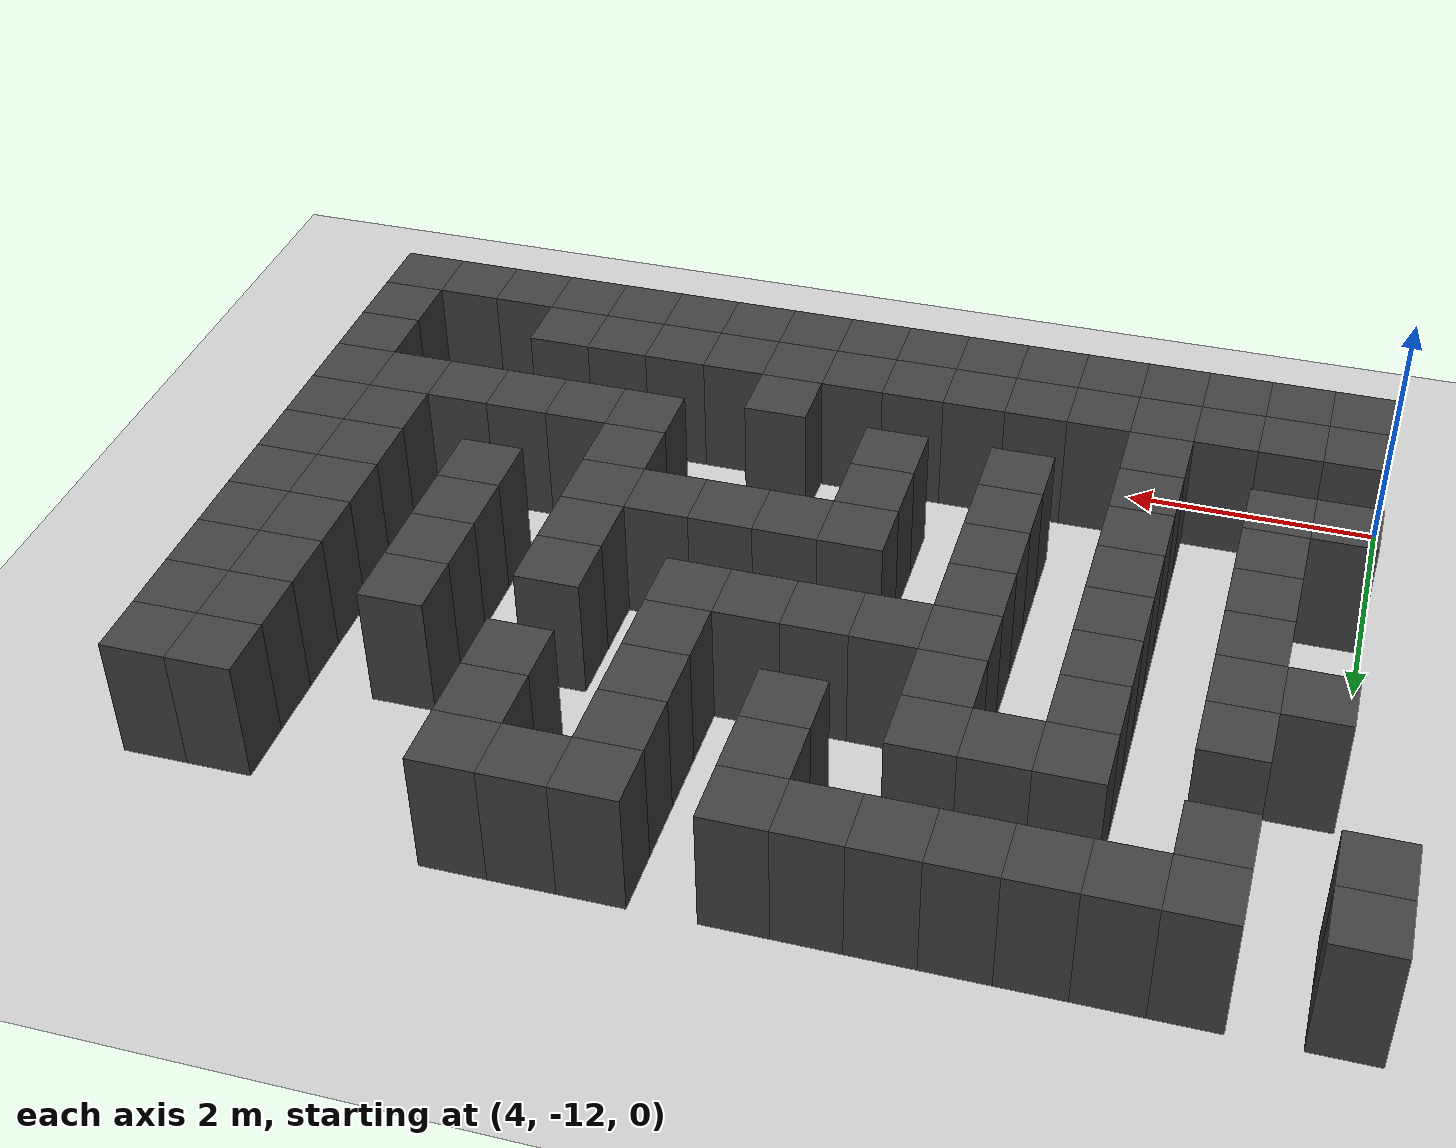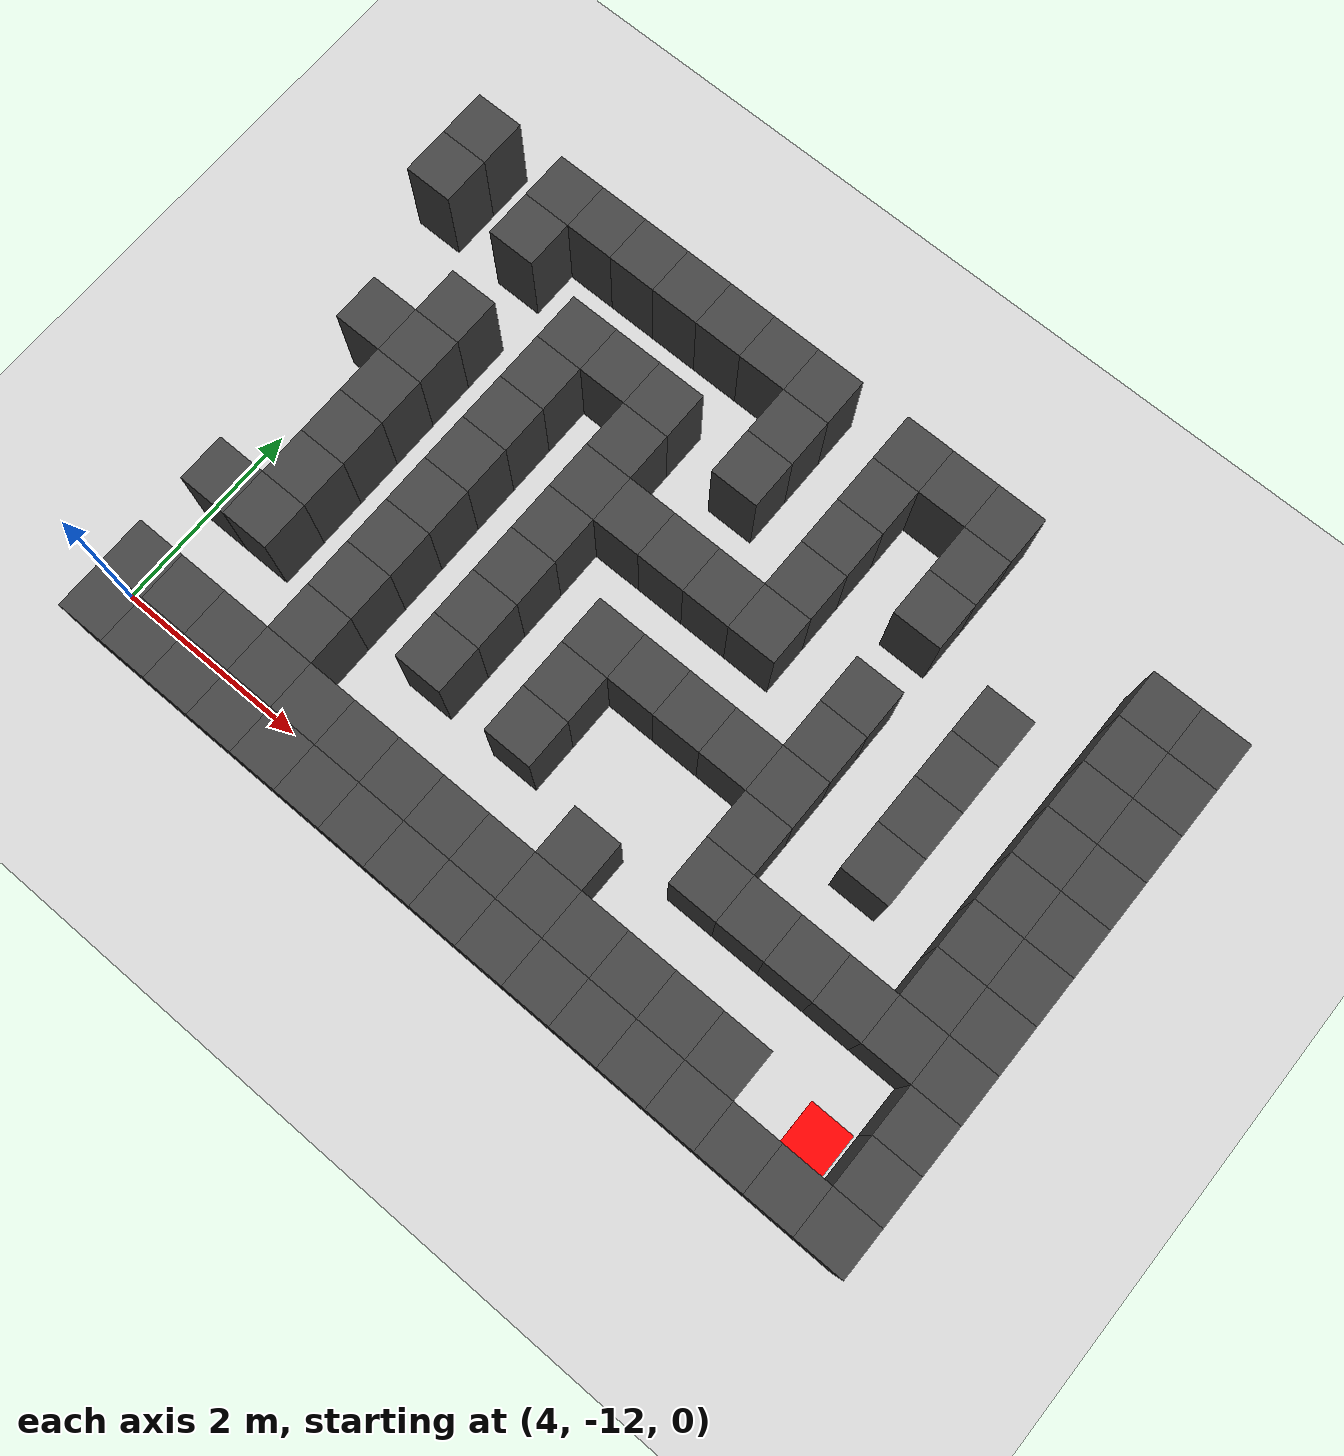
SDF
<sdf version="1.7">
 <world name="map_18332">
  <model name="ground_plane">
   <static>true</static>
   <link name="link">
    <collision name="collision">
     <geometry><plane><normal>0 0 1</normal><size>200 200</size></plane></geometry>
    </collision>
    <visual name="visual">
     <geometry><plane><normal>0 0 1</normal><size>200 200</size></plane></geometry>
     <material><ambient>0.8 0.8 0.8 1</ambient><diffuse>0.8 0.8 0.8 1</diffuse></material>
    </visual>
   </link>
  </model>
  <model name="maze_environment">
   <static>true</static>
   <link name="wall_977">
    <pose>3.750 -6.750 0.500 0 0 0</pose>
    <collision name="col"><geometry><box><size>0.5 0.5 1.0</size></box></geometry></collision>
    <visual name="vis">
     <geometry><box><size>0.5 0.5 1.0</size></box></geometry>
     <material><ambient>0.15 0.15 0.15 1</ambient><diffuse>0.25 0.25 0.25 1</diffuse></material>
    </visual>
   </link>
   <link name="wall_978">
    <pose>4.750 -6.750 0.500 0 0 0</pose>
    <collision name="col"><geometry><box><size>0.5 0.5 1.0</size></box></geometry></collision>
    <visual name="vis">
     <geometry><box><size>0.5 0.5 1.0</size></box></geometry>
     <material><ambient>0.15 0.15 0.15 1</ambient><diffuse>0.25 0.25 0.25 1</diffuse></material>
    </visual>
   </link>
   <link name="wall_979">
    <pose>5.250 -6.750 0.500 0 0 0</pose>
    <collision name="col"><geometry><box><size>0.5 0.5 1.0</size></box></geometry></collision>
    <visual name="vis">
     <geometry><box><size>0.5 0.5 1.0</size></box></geometry>
     <material><ambient>0.15 0.15 0.15 1</ambient><diffuse>0.25 0.25 0.25 1</diffuse></material>
    </visual>
   </link>
   <link name="wall_980">
    <pose>5.750 -6.750 0.500 0 0 0</pose>
    <collision name="col"><geometry><box><size>0.5 0.5 1.0</size></box></geometry></collision>
    <visual name="vis">
     <geometry><box><size>0.5 0.5 1.0</size></box></geometry>
     <material><ambient>0.15 0.15 0.15 1</ambient><diffuse>0.25 0.25 0.25 1</diffuse></material>
    </visual>
   </link>
   <link name="wall_981">
    <pose>6.250 -6.750 0.500 0 0 0</pose>
    <collision name="col"><geometry><box><size>0.5 0.5 1.0</size></box></geometry></collision>
    <visual name="vis">
     <geometry><box><size>0.5 0.5 1.0</size></box></geometry>
     <material><ambient>0.15 0.15 0.15 1</ambient><diffuse>0.25 0.25 0.25 1</diffuse></material>
    </visual>
   </link>
   <link name="wall_982">
    <pose>6.750 -6.750 0.500 0 0 0</pose>
    <collision name="col"><geometry><box><size>0.5 0.5 1.0</size></box></geometry></collision>
    <visual name="vis">
     <geometry><box><size>0.5 0.5 1.0</size></box></geometry>
     <material><ambient>0.15 0.15 0.15 1</ambient><diffuse>0.25 0.25 0.25 1</diffuse></material>
    </visual>
   </link>
   <link name="wall_983">
    <pose>7.250 -6.750 0.500 0 0 0</pose>
    <collision name="col"><geometry><box><size>0.5 0.5 1.0</size></box></geometry></collision>
    <visual name="vis">
     <geometry><box><size>0.5 0.5 1.0</size></box></geometry>
     <material><ambient>0.15 0.15 0.15 1</ambient><diffuse>0.25 0.25 0.25 1</diffuse></material>
    </visual>
   </link>
   <link name="wall_984">
    <pose>7.750 -6.750 0.500 0 0 0</pose>
    <collision name="col"><geometry><box><size>0.5 0.5 1.0</size></box></geometry></collision>
    <visual name="vis">
     <geometry><box><size>0.5 0.5 1.0</size></box></geometry>
     <material><ambient>0.15 0.15 0.15 1</ambient><diffuse>0.25 0.25 0.25 1</diffuse></material>
    </visual>
   </link>
   <link name="wall_985">
    <pose>8.750 -6.750 0.500 0 0 0</pose>
    <collision name="col"><geometry><box><size>0.5 0.5 1.0</size></box></geometry></collision>
    <visual name="vis">
     <geometry><box><size>0.5 0.5 1.0</size></box></geometry>
     <material><ambient>0.15 0.15 0.15 1</ambient><diffuse>0.25 0.25 0.25 1</diffuse></material>
    </visual>
   </link>
   <link name="wall_986">
    <pose>9.250 -6.750 0.500 0 0 0</pose>
    <collision name="col"><geometry><box><size>0.5 0.5 1.0</size></box></geometry></collision>
    <visual name="vis">
     <geometry><box><size>0.5 0.5 1.0</size></box></geometry>
     <material><ambient>0.15 0.15 0.15 1</ambient><diffuse>0.25 0.25 0.25 1</diffuse></material>
    </visual>
   </link>
   <link name="wall_987">
    <pose>9.750 -6.750 0.500 0 0 0</pose>
    <collision name="col"><geometry><box><size>0.5 0.5 1.0</size></box></geometry></collision>
    <visual name="vis">
     <geometry><box><size>0.5 0.5 1.0</size></box></geometry>
     <material><ambient>0.15 0.15 0.15 1</ambient><diffuse>0.25 0.25 0.25 1</diffuse></material>
    </visual>
   </link>
   <link name="wall_998">
    <pose>3.750 -7.250 0.500 0 0 0</pose>
    <collision name="col"><geometry><box><size>0.5 0.5 1.0</size></box></geometry></collision>
    <visual name="vis">
     <geometry><box><size>0.5 0.5 1.0</size></box></geometry>
     <material><ambient>0.15 0.15 0.15 1</ambient><diffuse>0.25 0.25 0.25 1</diffuse></material>
    </visual>
   </link>
   <link name="wall_999">
    <pose>4.750 -7.250 0.500 0 0 0</pose>
    <collision name="col"><geometry><box><size>0.5 0.5 1.0</size></box></geometry></collision>
    <visual name="vis">
     <geometry><box><size>0.5 0.5 1.0</size></box></geometry>
     <material><ambient>0.15 0.15 0.15 1</ambient><diffuse>0.25 0.25 0.25 1</diffuse></material>
    </visual>
   </link>
   <link name="wall_1000">
    <pose>7.750 -7.250 0.500 0 0 0</pose>
    <collision name="col"><geometry><box><size>0.5 0.5 1.0</size></box></geometry></collision>
    <visual name="vis">
     <geometry><box><size>0.5 0.5 1.0</size></box></geometry>
     <material><ambient>0.15 0.15 0.15 1</ambient><diffuse>0.25 0.25 0.25 1</diffuse></material>
    </visual>
   </link>
   <link name="wall_1001">
    <pose>8.750 -7.250 0.500 0 0 0</pose>
    <collision name="col"><geometry><box><size>0.5 0.5 1.0</size></box></geometry></collision>
    <visual name="vis">
     <geometry><box><size>0.5 0.5 1.0</size></box></geometry>
     <material><ambient>0.15 0.15 0.15 1</ambient><diffuse>0.25 0.25 0.25 1</diffuse></material>
    </visual>
   </link>
   <link name="wall_1002">
    <pose>9.750 -7.250 0.500 0 0 0</pose>
    <collision name="col"><geometry><box><size>0.5 0.5 1.0</size></box></geometry></collision>
    <visual name="vis">
     <geometry><box><size>0.5 0.5 1.0</size></box></geometry>
     <material><ambient>0.15 0.15 0.15 1</ambient><diffuse>0.25 0.25 0.25 1</diffuse></material>
    </visual>
   </link>
   <link name="wall_1003">
    <pose>11.750 -7.250 0.500 0 0 0</pose>
    <collision name="col"><geometry><box><size>0.5 0.5 1.0</size></box></geometry></collision>
    <visual name="vis">
     <geometry><box><size>0.5 0.5 1.0</size></box></geometry>
     <material><ambient>0.15 0.15 0.15 1</ambient><diffuse>0.25 0.25 0.25 1</diffuse></material>
    </visual>
   </link>
   <link name="wall_1004">
    <pose>12.250 -7.250 0.500 0 0 0</pose>
    <collision name="col"><geometry><box><size>0.5 0.5 1.0</size></box></geometry></collision>
    <visual name="vis">
     <geometry><box><size>0.5 0.5 1.0</size></box></geometry>
     <material><ambient>0.15 0.15 0.15 1</ambient><diffuse>0.25 0.25 0.25 1</diffuse></material>
    </visual>
   </link>
   <link name="wall_1029">
    <pose>5.750 -7.750 0.500 0 0 0</pose>
    <collision name="col"><geometry><box><size>0.5 0.5 1.0</size></box></geometry></collision>
    <visual name="vis">
     <geometry><box><size>0.5 0.5 1.0</size></box></geometry>
     <material><ambient>0.15 0.15 0.15 1</ambient><diffuse>0.25 0.25 0.25 1</diffuse></material>
    </visual>
   </link>
   <link name="wall_1030">
    <pose>6.250 -7.750 0.500 0 0 0</pose>
    <collision name="col"><geometry><box><size>0.5 0.5 1.0</size></box></geometry></collision>
    <visual name="vis">
     <geometry><box><size>0.5 0.5 1.0</size></box></geometry>
     <material><ambient>0.15 0.15 0.15 1</ambient><diffuse>0.25 0.25 0.25 1</diffuse></material>
    </visual>
   </link>
   <link name="wall_1031">
    <pose>6.750 -7.750 0.500 0 0 0</pose>
    <collision name="col"><geometry><box><size>0.5 0.5 1.0</size></box></geometry></collision>
    <visual name="vis">
     <geometry><box><size>0.5 0.5 1.0</size></box></geometry>
     <material><ambient>0.15 0.15 0.15 1</ambient><diffuse>0.25 0.25 0.25 1</diffuse></material>
    </visual>
   </link>
   <link name="wall_1032">
    <pose>7.750 -7.750 0.500 0 0 0</pose>
    <collision name="col"><geometry><box><size>0.5 0.5 1.0</size></box></geometry></collision>
    <visual name="vis">
     <geometry><box><size>0.5 0.5 1.0</size></box></geometry>
     <material><ambient>0.15 0.15 0.15 1</ambient><diffuse>0.25 0.25 0.25 1</diffuse></material>
    </visual>
   </link>
   <link name="wall_1033">
    <pose>8.750 -7.750 0.500 0 0 0</pose>
    <collision name="col"><geometry><box><size>0.5 0.5 1.0</size></box></geometry></collision>
    <visual name="vis">
     <geometry><box><size>0.5 0.5 1.0</size></box></geometry>
     <material><ambient>0.15 0.15 0.15 1</ambient><diffuse>0.25 0.25 0.25 1</diffuse></material>
    </visual>
   </link>
   <link name="wall_1034">
    <pose>9.750 -7.750 0.500 0 0 0</pose>
    <collision name="col"><geometry><box><size>0.5 0.5 1.0</size></box></geometry></collision>
    <visual name="vis">
     <geometry><box><size>0.5 0.5 1.0</size></box></geometry>
     <material><ambient>0.15 0.15 0.15 1</ambient><diffuse>0.25 0.25 0.25 1</diffuse></material>
    </visual>
   </link>
   <link name="wall_1035">
    <pose>11.750 -7.750 0.500 0 0 0</pose>
    <collision name="col"><geometry><box><size>0.5 0.5 1.0</size></box></geometry></collision>
    <visual name="vis">
     <geometry><box><size>0.5 0.5 1.0</size></box></geometry>
     <material><ambient>0.15 0.15 0.15 1</ambient><diffuse>0.25 0.25 0.25 1</diffuse></material>
    </visual>
   </link>
   <link name="wall_1036">
    <pose>12.250 -7.750 0.500 0 0 0</pose>
    <collision name="col"><geometry><box><size>0.5 0.5 1.0</size></box></geometry></collision>
    <visual name="vis">
     <geometry><box><size>0.5 0.5 1.0</size></box></geometry>
     <material><ambient>0.15 0.15 0.15 1</ambient><diffuse>0.25 0.25 0.25 1</diffuse></material>
    </visual>
   </link>
   <link name="wall_1046">
    <pose>4.750 -8.250 0.500 0 0 0</pose>
    <collision name="col"><geometry><box><size>0.5 0.5 1.0</size></box></geometry></collision>
    <visual name="vis">
     <geometry><box><size>0.5 0.5 1.0</size></box></geometry>
     <material><ambient>0.15 0.15 0.15 1</ambient><diffuse>0.25 0.25 0.25 1</diffuse></material>
    </visual>
   </link>
   <link name="wall_1047">
    <pose>5.750 -8.250 0.500 0 0 0</pose>
    <collision name="col"><geometry><box><size>0.5 0.5 1.0</size></box></geometry></collision>
    <visual name="vis">
     <geometry><box><size>0.5 0.5 1.0</size></box></geometry>
     <material><ambient>0.15 0.15 0.15 1</ambient><diffuse>0.25 0.25 0.25 1</diffuse></material>
    </visual>
   </link>
   <link name="wall_1048">
    <pose>6.750 -8.250 0.500 0 0 0</pose>
    <collision name="col"><geometry><box><size>0.5 0.5 1.0</size></box></geometry></collision>
    <visual name="vis">
     <geometry><box><size>0.5 0.5 1.0</size></box></geometry>
     <material><ambient>0.15 0.15 0.15 1</ambient><diffuse>0.25 0.25 0.25 1</diffuse></material>
    </visual>
   </link>
   <link name="wall_1049">
    <pose>8.750 -8.250 0.500 0 0 0</pose>
    <collision name="col"><geometry><box><size>0.5 0.5 1.0</size></box></geometry></collision>
    <visual name="vis">
     <geometry><box><size>0.5 0.5 1.0</size></box></geometry>
     <material><ambient>0.15 0.15 0.15 1</ambient><diffuse>0.25 0.25 0.25 1</diffuse></material>
    </visual>
   </link>
   <link name="wall_1050">
    <pose>10.750 -8.250 0.500 0 0 0</pose>
    <collision name="col"><geometry><box><size>0.5 0.5 1.0</size></box></geometry></collision>
    <visual name="vis">
     <geometry><box><size>0.5 0.5 1.0</size></box></geometry>
     <material><ambient>0.15 0.15 0.15 1</ambient><diffuse>0.25 0.25 0.25 1</diffuse></material>
    </visual>
   </link>
   <link name="wall_1051">
    <pose>11.750 -8.250 0.500 0 0 0</pose>
    <collision name="col"><geometry><box><size>0.5 0.5 1.0</size></box></geometry></collision>
    <visual name="vis">
     <geometry><box><size>0.5 0.5 1.0</size></box></geometry>
     <material><ambient>0.15 0.15 0.15 1</ambient><diffuse>0.25 0.25 0.25 1</diffuse></material>
    </visual>
   </link>
   <link name="wall_1052">
    <pose>12.250 -8.250 0.500 0 0 0</pose>
    <collision name="col"><geometry><box><size>0.5 0.5 1.0</size></box></geometry></collision>
    <visual name="vis">
     <geometry><box><size>0.5 0.5 1.0</size></box></geometry>
     <material><ambient>0.15 0.15 0.15 1</ambient><diffuse>0.25 0.25 0.25 1</diffuse></material>
    </visual>
   </link>
   <link name="wall_1078">
    <pose>4.250 -8.750 0.500 0 0 0</pose>
    <collision name="col"><geometry><box><size>0.5 0.5 1.0</size></box></geometry></collision>
    <visual name="vis">
     <geometry><box><size>0.5 0.5 1.0</size></box></geometry>
     <material><ambient>0.15 0.15 0.15 1</ambient><diffuse>0.25 0.25 0.25 1</diffuse></material>
    </visual>
   </link>
   <link name="wall_1079">
    <pose>4.750 -8.750 0.500 0 0 0</pose>
    <collision name="col"><geometry><box><size>0.5 0.5 1.0</size></box></geometry></collision>
    <visual name="vis">
     <geometry><box><size>0.5 0.5 1.0</size></box></geometry>
     <material><ambient>0.15 0.15 0.15 1</ambient><diffuse>0.25 0.25 0.25 1</diffuse></material>
    </visual>
   </link>
   <link name="wall_1080">
    <pose>5.750 -8.750 0.500 0 0 0</pose>
    <collision name="col"><geometry><box><size>0.5 0.5 1.0</size></box></geometry></collision>
    <visual name="vis">
     <geometry><box><size>0.5 0.5 1.0</size></box></geometry>
     <material><ambient>0.15 0.15 0.15 1</ambient><diffuse>0.25 0.25 0.25 1</diffuse></material>
    </visual>
   </link>
   <link name="wall_1081">
    <pose>6.750 -8.750 0.500 0 0 0</pose>
    <collision name="col"><geometry><box><size>0.5 0.5 1.0</size></box></geometry></collision>
    <visual name="vis">
     <geometry><box><size>0.5 0.5 1.0</size></box></geometry>
     <material><ambient>0.15 0.15 0.15 1</ambient><diffuse>0.25 0.25 0.25 1</diffuse></material>
    </visual>
   </link>
   <link name="wall_1082">
    <pose>7.250 -8.750 0.500 0 0 0</pose>
    <collision name="col"><geometry><box><size>0.5 0.5 1.0</size></box></geometry></collision>
    <visual name="vis">
     <geometry><box><size>0.5 0.5 1.0</size></box></geometry>
     <material><ambient>0.15 0.15 0.15 1</ambient><diffuse>0.25 0.25 0.25 1</diffuse></material>
    </visual>
   </link>
   <link name="wall_1083">
    <pose>7.750 -8.750 0.500 0 0 0</pose>
    <collision name="col"><geometry><box><size>0.5 0.5 1.0</size></box></geometry></collision>
    <visual name="vis">
     <geometry><box><size>0.5 0.5 1.0</size></box></geometry>
     <material><ambient>0.15 0.15 0.15 1</ambient><diffuse>0.25 0.25 0.25 1</diffuse></material>
    </visual>
   </link>
   <link name="wall_1084">
    <pose>8.250 -8.750 0.500 0 0 0</pose>
    <collision name="col"><geometry><box><size>0.5 0.5 1.0</size></box></geometry></collision>
    <visual name="vis">
     <geometry><box><size>0.5 0.5 1.0</size></box></geometry>
     <material><ambient>0.15 0.15 0.15 1</ambient><diffuse>0.25 0.25 0.25 1</diffuse></material>
    </visual>
   </link>
   <link name="wall_1085">
    <pose>8.750 -8.750 0.500 0 0 0</pose>
    <collision name="col"><geometry><box><size>0.5 0.5 1.0</size></box></geometry></collision>
    <visual name="vis">
     <geometry><box><size>0.5 0.5 1.0</size></box></geometry>
     <material><ambient>0.15 0.15 0.15 1</ambient><diffuse>0.25 0.25 0.25 1</diffuse></material>
    </visual>
   </link>
   <link name="wall_1086">
    <pose>9.750 -8.750 0.500 0 0 0</pose>
    <collision name="col"><geometry><box><size>0.5 0.5 1.0</size></box></geometry></collision>
    <visual name="vis">
     <geometry><box><size>0.5 0.5 1.0</size></box></geometry>
     <material><ambient>0.15 0.15 0.15 1</ambient><diffuse>0.25 0.25 0.25 1</diffuse></material>
    </visual>
   </link>
   <link name="wall_1087">
    <pose>10.750 -8.750 0.500 0 0 0</pose>
    <collision name="col"><geometry><box><size>0.5 0.5 1.0</size></box></geometry></collision>
    <visual name="vis">
     <geometry><box><size>0.5 0.5 1.0</size></box></geometry>
     <material><ambient>0.15 0.15 0.15 1</ambient><diffuse>0.25 0.25 0.25 1</diffuse></material>
    </visual>
   </link>
   <link name="wall_1088">
    <pose>11.750 -8.750 0.500 0 0 0</pose>
    <collision name="col"><geometry><box><size>0.5 0.5 1.0</size></box></geometry></collision>
    <visual name="vis">
     <geometry><box><size>0.5 0.5 1.0</size></box></geometry>
     <material><ambient>0.15 0.15 0.15 1</ambient><diffuse>0.25 0.25 0.25 1</diffuse></material>
    </visual>
   </link>
   <link name="wall_1089">
    <pose>12.250 -8.750 0.500 0 0 0</pose>
    <collision name="col"><geometry><box><size>0.5 0.5 1.0</size></box></geometry></collision>
    <visual name="vis">
     <geometry><box><size>0.5 0.5 1.0</size></box></geometry>
     <material><ambient>0.15 0.15 0.15 1</ambient><diffuse>0.25 0.25 0.25 1</diffuse></material>
    </visual>
   </link>
   <link name="wall_1098">
    <pose>4.750 -9.250 0.500 0 0 0</pose>
    <collision name="col"><geometry><box><size>0.5 0.5 1.0</size></box></geometry></collision>
    <visual name="vis">
     <geometry><box><size>0.5 0.5 1.0</size></box></geometry>
     <material><ambient>0.15 0.15 0.15 1</ambient><diffuse>0.25 0.25 0.25 1</diffuse></material>
    </visual>
   </link>
   <link name="wall_1099">
    <pose>5.750 -9.250 0.500 0 0 0</pose>
    <collision name="col"><geometry><box><size>0.5 0.5 1.0</size></box></geometry></collision>
    <visual name="vis">
     <geometry><box><size>0.5 0.5 1.0</size></box></geometry>
     <material><ambient>0.15 0.15 0.15 1</ambient><diffuse>0.25 0.25 0.25 1</diffuse></material>
    </visual>
   </link>
   <link name="wall_1100">
    <pose>6.750 -9.250 0.500 0 0 0</pose>
    <collision name="col"><geometry><box><size>0.5 0.5 1.0</size></box></geometry></collision>
    <visual name="vis">
     <geometry><box><size>0.5 0.5 1.0</size></box></geometry>
     <material><ambient>0.15 0.15 0.15 1</ambient><diffuse>0.25 0.25 0.25 1</diffuse></material>
    </visual>
   </link>
   <link name="wall_1101">
    <pose>9.750 -9.250 0.500 0 0 0</pose>
    <collision name="col"><geometry><box><size>0.5 0.5 1.0</size></box></geometry></collision>
    <visual name="vis">
     <geometry><box><size>0.5 0.5 1.0</size></box></geometry>
     <material><ambient>0.15 0.15 0.15 1</ambient><diffuse>0.25 0.25 0.25 1</diffuse></material>
    </visual>
   </link>
   <link name="wall_1102">
    <pose>10.750 -9.250 0.500 0 0 0</pose>
    <collision name="col"><geometry><box><size>0.5 0.5 1.0</size></box></geometry></collision>
    <visual name="vis">
     <geometry><box><size>0.5 0.5 1.0</size></box></geometry>
     <material><ambient>0.15 0.15 0.15 1</ambient><diffuse>0.25 0.25 0.25 1</diffuse></material>
    </visual>
   </link>
   <link name="wall_1103">
    <pose>11.750 -9.250 0.500 0 0 0</pose>
    <collision name="col"><geometry><box><size>0.5 0.5 1.0</size></box></geometry></collision>
    <visual name="vis">
     <geometry><box><size>0.5 0.5 1.0</size></box></geometry>
     <material><ambient>0.15 0.15 0.15 1</ambient><diffuse>0.25 0.25 0.25 1</diffuse></material>
    </visual>
   </link>
   <link name="wall_1104">
    <pose>12.250 -9.250 0.500 0 0 0</pose>
    <collision name="col"><geometry><box><size>0.5 0.5 1.0</size></box></geometry></collision>
    <visual name="vis">
     <geometry><box><size>0.5 0.5 1.0</size></box></geometry>
     <material><ambient>0.15 0.15 0.15 1</ambient><diffuse>0.25 0.25 0.25 1</diffuse></material>
    </visual>
   </link>
   <link name="wall_1131">
    <pose>4.750 -9.750 0.500 0 0 0</pose>
    <collision name="col"><geometry><box><size>0.5 0.5 1.0</size></box></geometry></collision>
    <visual name="vis">
     <geometry><box><size>0.5 0.5 1.0</size></box></geometry>
     <material><ambient>0.15 0.15 0.15 1</ambient><diffuse>0.25 0.25 0.25 1</diffuse></material>
    </visual>
   </link>
   <link name="wall_1132">
    <pose>5.750 -9.750 0.500 0 0 0</pose>
    <collision name="col"><geometry><box><size>0.5 0.5 1.0</size></box></geometry></collision>
    <visual name="vis">
     <geometry><box><size>0.5 0.5 1.0</size></box></geometry>
     <material><ambient>0.15 0.15 0.15 1</ambient><diffuse>0.25 0.25 0.25 1</diffuse></material>
    </visual>
   </link>
   <link name="wall_1133">
    <pose>6.750 -9.750 0.500 0 0 0</pose>
    <collision name="col"><geometry><box><size>0.5 0.5 1.0</size></box></geometry></collision>
    <visual name="vis">
     <geometry><box><size>0.5 0.5 1.0</size></box></geometry>
     <material><ambient>0.15 0.15 0.15 1</ambient><diffuse>0.25 0.25 0.25 1</diffuse></material>
    </visual>
   </link>
   <link name="wall_1134">
    <pose>7.750 -9.750 0.500 0 0 0</pose>
    <collision name="col"><geometry><box><size>0.5 0.5 1.0</size></box></geometry></collision>
    <visual name="vis">
     <geometry><box><size>0.5 0.5 1.0</size></box></geometry>
     <material><ambient>0.15 0.15 0.15 1</ambient><diffuse>0.25 0.25 0.25 1</diffuse></material>
    </visual>
   </link>
   <link name="wall_1135">
    <pose>8.250 -9.750 0.500 0 0 0</pose>
    <collision name="col"><geometry><box><size>0.5 0.5 1.0</size></box></geometry></collision>
    <visual name="vis">
     <geometry><box><size>0.5 0.5 1.0</size></box></geometry>
     <material><ambient>0.15 0.15 0.15 1</ambient><diffuse>0.25 0.25 0.25 1</diffuse></material>
    </visual>
   </link>
   <link name="wall_1136">
    <pose>8.750 -9.750 0.500 0 0 0</pose>
    <collision name="col"><geometry><box><size>0.5 0.5 1.0</size></box></geometry></collision>
    <visual name="vis">
     <geometry><box><size>0.5 0.5 1.0</size></box></geometry>
     <material><ambient>0.15 0.15 0.15 1</ambient><diffuse>0.25 0.25 0.25 1</diffuse></material>
    </visual>
   </link>
   <link name="wall_1137">
    <pose>9.250 -9.750 0.500 0 0 0</pose>
    <collision name="col"><geometry><box><size>0.5 0.5 1.0</size></box></geometry></collision>
    <visual name="vis">
     <geometry><box><size>0.5 0.5 1.0</size></box></geometry>
     <material><ambient>0.15 0.15 0.15 1</ambient><diffuse>0.25 0.25 0.25 1</diffuse></material>
    </visual>
   </link>
   <link name="wall_1138">
    <pose>9.750 -9.750 0.500 0 0 0</pose>
    <collision name="col"><geometry><box><size>0.5 0.5 1.0</size></box></geometry></collision>
    <visual name="vis">
     <geometry><box><size>0.5 0.5 1.0</size></box></geometry>
     <material><ambient>0.15 0.15 0.15 1</ambient><diffuse>0.25 0.25 0.25 1</diffuse></material>
    </visual>
   </link>
   <link name="wall_1139">
    <pose>10.750 -9.750 0.500 0 0 0</pose>
    <collision name="col"><geometry><box><size>0.5 0.5 1.0</size></box></geometry></collision>
    <visual name="vis">
     <geometry><box><size>0.5 0.5 1.0</size></box></geometry>
     <material><ambient>0.15 0.15 0.15 1</ambient><diffuse>0.25 0.25 0.25 1</diffuse></material>
    </visual>
   </link>
   <link name="wall_1140">
    <pose>11.750 -9.750 0.500 0 0 0</pose>
    <collision name="col"><geometry><box><size>0.5 0.5 1.0</size></box></geometry></collision>
    <visual name="vis">
     <geometry><box><size>0.5 0.5 1.0</size></box></geometry>
     <material><ambient>0.15 0.15 0.15 1</ambient><diffuse>0.25 0.25 0.25 1</diffuse></material>
    </visual>
   </link>
   <link name="wall_1141">
    <pose>12.250 -9.750 0.500 0 0 0</pose>
    <collision name="col"><geometry><box><size>0.5 0.5 1.0</size></box></geometry></collision>
    <visual name="vis">
     <geometry><box><size>0.5 0.5 1.0</size></box></geometry>
     <material><ambient>0.15 0.15 0.15 1</ambient><diffuse>0.25 0.25 0.25 1</diffuse></material>
    </visual>
   </link>
   <link name="wall_1151">
    <pose>4.750 -10.250 0.500 0 0 0</pose>
    <collision name="col"><geometry><box><size>0.5 0.5 1.0</size></box></geometry></collision>
    <visual name="vis">
     <geometry><box><size>0.5 0.5 1.0</size></box></geometry>
     <material><ambient>0.15 0.15 0.15 1</ambient><diffuse>0.25 0.25 0.25 1</diffuse></material>
    </visual>
   </link>
   <link name="wall_1152">
    <pose>5.750 -10.250 0.500 0 0 0</pose>
    <collision name="col"><geometry><box><size>0.5 0.5 1.0</size></box></geometry></collision>
    <visual name="vis">
     <geometry><box><size>0.5 0.5 1.0</size></box></geometry>
     <material><ambient>0.15 0.15 0.15 1</ambient><diffuse>0.25 0.25 0.25 1</diffuse></material>
    </visual>
   </link>
   <link name="wall_1153">
    <pose>6.750 -10.250 0.500 0 0 0</pose>
    <collision name="col"><geometry><box><size>0.5 0.5 1.0</size></box></geometry></collision>
    <visual name="vis">
     <geometry><box><size>0.5 0.5 1.0</size></box></geometry>
     <material><ambient>0.15 0.15 0.15 1</ambient><diffuse>0.25 0.25 0.25 1</diffuse></material>
    </visual>
   </link>
   <link name="wall_1154">
    <pose>7.750 -10.250 0.500 0 0 0</pose>
    <collision name="col"><geometry><box><size>0.5 0.5 1.0</size></box></geometry></collision>
    <visual name="vis">
     <geometry><box><size>0.5 0.5 1.0</size></box></geometry>
     <material><ambient>0.15 0.15 0.15 1</ambient><diffuse>0.25 0.25 0.25 1</diffuse></material>
    </visual>
   </link>
   <link name="wall_1155">
    <pose>9.750 -10.250 0.500 0 0 0</pose>
    <collision name="col"><geometry><box><size>0.5 0.5 1.0</size></box></geometry></collision>
    <visual name="vis">
     <geometry><box><size>0.5 0.5 1.0</size></box></geometry>
     <material><ambient>0.15 0.15 0.15 1</ambient><diffuse>0.25 0.25 0.25 1</diffuse></material>
    </visual>
   </link>
   <link name="wall_1156">
    <pose>11.750 -10.250 0.500 0 0 0</pose>
    <collision name="col"><geometry><box><size>0.5 0.5 1.0</size></box></geometry></collision>
    <visual name="vis">
     <geometry><box><size>0.5 0.5 1.0</size></box></geometry>
     <material><ambient>0.15 0.15 0.15 1</ambient><diffuse>0.25 0.25 0.25 1</diffuse></material>
    </visual>
   </link>
   <link name="wall_1157">
    <pose>12.250 -10.250 0.500 0 0 0</pose>
    <collision name="col"><geometry><box><size>0.5 0.5 1.0</size></box></geometry></collision>
    <visual name="vis">
     <geometry><box><size>0.5 0.5 1.0</size></box></geometry>
     <material><ambient>0.15 0.15 0.15 1</ambient><diffuse>0.25 0.25 0.25 1</diffuse></material>
    </visual>
   </link>
   <link name="wall_1178">
    <pose>4.250 -10.750 0.500 0 0 0</pose>
    <collision name="col"><geometry><box><size>0.5 0.5 1.0</size></box></geometry></collision>
    <visual name="vis">
     <geometry><box><size>0.5 0.5 1.0</size></box></geometry>
     <material><ambient>0.15 0.15 0.15 1</ambient><diffuse>0.25 0.25 0.25 1</diffuse></material>
    </visual>
   </link>
   <link name="wall_1179">
    <pose>4.750 -10.750 0.500 0 0 0</pose>
    <collision name="col"><geometry><box><size>0.5 0.5 1.0</size></box></geometry></collision>
    <visual name="vis">
     <geometry><box><size>0.5 0.5 1.0</size></box></geometry>
     <material><ambient>0.15 0.15 0.15 1</ambient><diffuse>0.25 0.25 0.25 1</diffuse></material>
    </visual>
   </link>
   <link name="wall_1180">
    <pose>5.750 -10.750 0.500 0 0 0</pose>
    <collision name="col"><geometry><box><size>0.5 0.5 1.0</size></box></geometry></collision>
    <visual name="vis">
     <geometry><box><size>0.5 0.5 1.0</size></box></geometry>
     <material><ambient>0.15 0.15 0.15 1</ambient><diffuse>0.25 0.25 0.25 1</diffuse></material>
    </visual>
   </link>
   <link name="wall_1181">
    <pose>6.750 -10.750 0.500 0 0 0</pose>
    <collision name="col"><geometry><box><size>0.5 0.5 1.0</size></box></geometry></collision>
    <visual name="vis">
     <geometry><box><size>0.5 0.5 1.0</size></box></geometry>
     <material><ambient>0.15 0.15 0.15 1</ambient><diffuse>0.25 0.25 0.25 1</diffuse></material>
    </visual>
   </link>
   <link name="wall_1182">
    <pose>7.750 -10.750 0.500 0 0 0</pose>
    <collision name="col"><geometry><box><size>0.5 0.5 1.0</size></box></geometry></collision>
    <visual name="vis">
     <geometry><box><size>0.5 0.5 1.0</size></box></geometry>
     <material><ambient>0.15 0.15 0.15 1</ambient><diffuse>0.25 0.25 0.25 1</diffuse></material>
    </visual>
   </link>
   <link name="wall_1183">
    <pose>9.750 -10.750 0.500 0 0 0</pose>
    <collision name="col"><geometry><box><size>0.5 0.5 1.0</size></box></geometry></collision>
    <visual name="vis">
     <geometry><box><size>0.5 0.5 1.0</size></box></geometry>
     <material><ambient>0.15 0.15 0.15 1</ambient><diffuse>0.25 0.25 0.25 1</diffuse></material>
    </visual>
   </link>
   <link name="wall_1184">
    <pose>10.250 -10.750 0.500 0 0 0</pose>
    <collision name="col"><geometry><box><size>0.5 0.5 1.0</size></box></geometry></collision>
    <visual name="vis">
     <geometry><box><size>0.5 0.5 1.0</size></box></geometry>
     <material><ambient>0.15 0.15 0.15 1</ambient><diffuse>0.25 0.25 0.25 1</diffuse></material>
    </visual>
   </link>
   <link name="wall_1185">
    <pose>10.750 -10.750 0.500 0 0 0</pose>
    <collision name="col"><geometry><box><size>0.5 0.5 1.0</size></box></geometry></collision>
    <visual name="vis">
     <geometry><box><size>0.5 0.5 1.0</size></box></geometry>
     <material><ambient>0.15 0.15 0.15 1</ambient><diffuse>0.25 0.25 0.25 1</diffuse></material>
    </visual>
   </link>
   <link name="wall_1186">
    <pose>11.250 -10.750 0.500 0 0 0</pose>
    <collision name="col"><geometry><box><size>0.5 0.5 1.0</size></box></geometry></collision>
    <visual name="vis">
     <geometry><box><size>0.5 0.5 1.0</size></box></geometry>
     <material><ambient>0.15 0.15 0.15 1</ambient><diffuse>0.25 0.25 0.25 1</diffuse></material>
    </visual>
   </link>
   <link name="wall_1187">
    <pose>11.750 -10.750 0.500 0 0 0</pose>
    <collision name="col"><geometry><box><size>0.5 0.5 1.0</size></box></geometry></collision>
    <visual name="vis">
     <geometry><box><size>0.5 0.5 1.0</size></box></geometry>
     <material><ambient>0.15 0.15 0.15 1</ambient><diffuse>0.25 0.25 0.25 1</diffuse></material>
    </visual>
   </link>
   <link name="wall_1188">
    <pose>12.250 -10.750 0.500 0 0 0</pose>
    <collision name="col"><geometry><box><size>0.5 0.5 1.0</size></box></geometry></collision>
    <visual name="vis">
     <geometry><box><size>0.5 0.5 1.0</size></box></geometry>
     <material><ambient>0.15 0.15 0.15 1</ambient><diffuse>0.25 0.25 0.25 1</diffuse></material>
    </visual>
   </link>
   <link name="wall_1192">
    <pose>5.750 -11.250 0.500 0 0 0</pose>
    <collision name="col"><geometry><box><size>0.5 0.5 1.0</size></box></geometry></collision>
    <visual name="vis">
     <geometry><box><size>0.5 0.5 1.0</size></box></geometry>
     <material><ambient>0.15 0.15 0.15 1</ambient><diffuse>0.25 0.25 0.25 1</diffuse></material>
    </visual>
   </link>
   <link name="wall_1193">
    <pose>8.750 -11.250 0.500 0 0 0</pose>
    <collision name="col"><geometry><box><size>0.5 0.5 1.0</size></box></geometry></collision>
    <visual name="vis">
     <geometry><box><size>0.5 0.5 1.0</size></box></geometry>
     <material><ambient>0.15 0.15 0.15 1</ambient><diffuse>0.25 0.25 0.25 1</diffuse></material>
    </visual>
   </link>
   <link name="wall_1194">
    <pose>12.250 -11.250 0.500 0 0 0</pose>
    <collision name="col"><geometry><box><size>0.5 0.5 1.0</size></box></geometry></collision>
    <visual name="vis">
     <geometry><box><size>0.5 0.5 1.0</size></box></geometry>
     <material><ambient>0.15 0.15 0.15 1</ambient><diffuse>0.25 0.25 0.25 1</diffuse></material>
    </visual>
   </link>
   <link name="wall_1228">
    <pose>4.250 -11.750 0.500 0 0 0</pose>
    <collision name="col"><geometry><box><size>0.5 0.5 1.0</size></box></geometry></collision>
    <visual name="vis">
     <geometry><box><size>0.5 0.5 1.0</size></box></geometry>
     <material><ambient>0.15 0.15 0.15 1</ambient><diffuse>0.25 0.25 0.25 1</diffuse></material>
    </visual>
   </link>
   <link name="wall_1229">
    <pose>4.750 -11.750 0.500 0 0 0</pose>
    <collision name="col"><geometry><box><size>0.5 0.5 1.0</size></box></geometry></collision>
    <visual name="vis">
     <geometry><box><size>0.5 0.5 1.0</size></box></geometry>
     <material><ambient>0.15 0.15 0.15 1</ambient><diffuse>0.25 0.25 0.25 1</diffuse></material>
    </visual>
   </link>
   <link name="wall_1230">
    <pose>5.250 -11.750 0.500 0 0 0</pose>
    <collision name="col"><geometry><box><size>0.5 0.5 1.0</size></box></geometry></collision>
    <visual name="vis">
     <geometry><box><size>0.5 0.5 1.0</size></box></geometry>
     <material><ambient>0.15 0.15 0.15 1</ambient><diffuse>0.25 0.25 0.25 1</diffuse></material>
    </visual>
   </link>
   <link name="wall_1231">
    <pose>5.750 -11.750 0.500 0 0 0</pose>
    <collision name="col"><geometry><box><size>0.5 0.5 1.0</size></box></geometry></collision>
    <visual name="vis">
     <geometry><box><size>0.5 0.5 1.0</size></box></geometry>
     <material><ambient>0.15 0.15 0.15 1</ambient><diffuse>0.25 0.25 0.25 1</diffuse></material>
    </visual>
   </link>
   <link name="wall_1232">
    <pose>6.250 -11.750 0.500 0 0 0</pose>
    <collision name="col"><geometry><box><size>0.5 0.5 1.0</size></box></geometry></collision>
    <visual name="vis">
     <geometry><box><size>0.5 0.5 1.0</size></box></geometry>
     <material><ambient>0.15 0.15 0.15 1</ambient><diffuse>0.25 0.25 0.25 1</diffuse></material>
    </visual>
   </link>
   <link name="wall_1233">
    <pose>6.750 -11.750 0.500 0 0 0</pose>
    <collision name="col"><geometry><box><size>0.5 0.5 1.0</size></box></geometry></collision>
    <visual name="vis">
     <geometry><box><size>0.5 0.5 1.0</size></box></geometry>
     <material><ambient>0.15 0.15 0.15 1</ambient><diffuse>0.25 0.25 0.25 1</diffuse></material>
    </visual>
   </link>
   <link name="wall_1234">
    <pose>7.250 -11.750 0.500 0 0 0</pose>
    <collision name="col"><geometry><box><size>0.5 0.5 1.0</size></box></geometry></collision>
    <visual name="vis">
     <geometry><box><size>0.5 0.5 1.0</size></box></geometry>
     <material><ambient>0.15 0.15 0.15 1</ambient><diffuse>0.25 0.25 0.25 1</diffuse></material>
    </visual>
   </link>
   <link name="wall_1235">
    <pose>7.750 -11.750 0.500 0 0 0</pose>
    <collision name="col"><geometry><box><size>0.5 0.5 1.0</size></box></geometry></collision>
    <visual name="vis">
     <geometry><box><size>0.5 0.5 1.0</size></box></geometry>
     <material><ambient>0.15 0.15 0.15 1</ambient><diffuse>0.25 0.25 0.25 1</diffuse></material>
    </visual>
   </link>
   <link name="wall_1236">
    <pose>8.250 -11.750 0.500 0 0 0</pose>
    <collision name="col"><geometry><box><size>0.5 0.5 1.0</size></box></geometry></collision>
    <visual name="vis">
     <geometry><box><size>0.5 0.5 1.0</size></box></geometry>
     <material><ambient>0.15 0.15 0.15 1</ambient><diffuse>0.25 0.25 0.25 1</diffuse></material>
    </visual>
   </link>
   <link name="wall_1237">
    <pose>8.750 -11.750 0.500 0 0 0</pose>
    <collision name="col"><geometry><box><size>0.5 0.5 1.0</size></box></geometry></collision>
    <visual name="vis">
     <geometry><box><size>0.5 0.5 1.0</size></box></geometry>
     <material><ambient>0.15 0.15 0.15 1</ambient><diffuse>0.25 0.25 0.25 1</diffuse></material>
    </visual>
   </link>
   <link name="wall_1238">
    <pose>9.250 -11.750 0.500 0 0 0</pose>
    <collision name="col"><geometry><box><size>0.5 0.5 1.0</size></box></geometry></collision>
    <visual name="vis">
     <geometry><box><size>0.5 0.5 1.0</size></box></geometry>
     <material><ambient>0.15 0.15 0.15 1</ambient><diffuse>0.25 0.25 0.25 1</diffuse></material>
    </visual>
   </link>
   <link name="wall_1239">
    <pose>9.750 -11.750 0.500 0 0 0</pose>
    <collision name="col"><geometry><box><size>0.5 0.5 1.0</size></box></geometry></collision>
    <visual name="vis">
     <geometry><box><size>0.5 0.5 1.0</size></box></geometry>
     <material><ambient>0.15 0.15 0.15 1</ambient><diffuse>0.25 0.25 0.25 1</diffuse></material>
    </visual>
   </link>
   <link name="wall_1240">
    <pose>10.250 -11.750 0.500 0 0 0</pose>
    <collision name="col"><geometry><box><size>0.5 0.5 1.0</size></box></geometry></collision>
    <visual name="vis">
     <geometry><box><size>0.5 0.5 1.0</size></box></geometry>
     <material><ambient>0.15 0.15 0.15 1</ambient><diffuse>0.25 0.25 0.25 1</diffuse></material>
    </visual>
   </link>
   <link name="wall_1241">
    <pose>10.750 -11.750 0.500 0 0 0</pose>
    <collision name="col"><geometry><box><size>0.5 0.5 1.0</size></box></geometry></collision>
    <visual name="vis">
     <geometry><box><size>0.5 0.5 1.0</size></box></geometry>
     <material><ambient>0.15 0.15 0.15 1</ambient><diffuse>0.25 0.25 0.25 1</diffuse></material>
    </visual>
   </link>
   <link name="wall_1242">
    <pose>12.250 -11.750 0.500 0 0 0</pose>
    <collision name="col"><geometry><box><size>0.5 0.5 1.0</size></box></geometry></collision>
    <visual name="vis">
     <geometry><box><size>0.5 0.5 1.0</size></box></geometry>
     <material><ambient>0.15 0.15 0.15 1</ambient><diffuse>0.25 0.25 0.25 1</diffuse></material>
    </visual>
   </link>
   <link name="wall_1276">
    <pose>4.250 -12.250 0.500 0 0 0</pose>
    <collision name="col"><geometry><box><size>0.5 0.5 1.0</size></box></geometry></collision>
    <visual name="vis">
     <geometry><box><size>0.5 0.5 1.0</size></box></geometry>
     <material><ambient>0.15 0.15 0.15 1</ambient><diffuse>0.25 0.25 0.25 1</diffuse></material>
    </visual>
   </link>
   <link name="wall_1277">
    <pose>4.750 -12.250 0.500 0 0 0</pose>
    <collision name="col"><geometry><box><size>0.5 0.5 1.0</size></box></geometry></collision>
    <visual name="vis">
     <geometry><box><size>0.5 0.5 1.0</size></box></geometry>
     <material><ambient>0.15 0.15 0.15 1</ambient><diffuse>0.25 0.25 0.25 1</diffuse></material>
    </visual>
   </link>
   <link name="wall_1278">
    <pose>5.250 -12.250 0.500 0 0 0</pose>
    <collision name="col"><geometry><box><size>0.5 0.5 1.0</size></box></geometry></collision>
    <visual name="vis">
     <geometry><box><size>0.5 0.5 1.0</size></box></geometry>
     <material><ambient>0.15 0.15 0.15 1</ambient><diffuse>0.25 0.25 0.25 1</diffuse></material>
    </visual>
   </link>
   <link name="wall_1279">
    <pose>5.750 -12.250 0.500 0 0 0</pose>
    <collision name="col"><geometry><box><size>0.5 0.5 1.0</size></box></geometry></collision>
    <visual name="vis">
     <geometry><box><size>0.5 0.5 1.0</size></box></geometry>
     <material><ambient>0.15 0.15 0.15 1</ambient><diffuse>0.25 0.25 0.25 1</diffuse></material>
    </visual>
   </link>
   <link name="wall_1280">
    <pose>6.250 -12.250 0.500 0 0 0</pose>
    <collision name="col"><geometry><box><size>0.5 0.5 1.0</size></box></geometry></collision>
    <visual name="vis">
     <geometry><box><size>0.5 0.5 1.0</size></box></geometry>
     <material><ambient>0.15 0.15 0.15 1</ambient><diffuse>0.25 0.25 0.25 1</diffuse></material>
    </visual>
   </link>
   <link name="wall_1281">
    <pose>6.750 -12.250 0.500 0 0 0</pose>
    <collision name="col"><geometry><box><size>0.5 0.5 1.0</size></box></geometry></collision>
    <visual name="vis">
     <geometry><box><size>0.5 0.5 1.0</size></box></geometry>
     <material><ambient>0.15 0.15 0.15 1</ambient><diffuse>0.25 0.25 0.25 1</diffuse></material>
    </visual>
   </link>
   <link name="wall_1282">
    <pose>7.250 -12.250 0.500 0 0 0</pose>
    <collision name="col"><geometry><box><size>0.5 0.5 1.0</size></box></geometry></collision>
    <visual name="vis">
     <geometry><box><size>0.5 0.5 1.0</size></box></geometry>
     <material><ambient>0.15 0.15 0.15 1</ambient><diffuse>0.25 0.25 0.25 1</diffuse></material>
    </visual>
   </link>
   <link name="wall_1283">
    <pose>7.750 -12.250 0.500 0 0 0</pose>
    <collision name="col"><geometry><box><size>0.5 0.5 1.0</size></box></geometry></collision>
    <visual name="vis">
     <geometry><box><size>0.5 0.5 1.0</size></box></geometry>
     <material><ambient>0.15 0.15 0.15 1</ambient><diffuse>0.25 0.25 0.25 1</diffuse></material>
    </visual>
   </link>
   <link name="wall_1284">
    <pose>8.250 -12.250 0.500 0 0 0</pose>
    <collision name="col"><geometry><box><size>0.5 0.5 1.0</size></box></geometry></collision>
    <visual name="vis">
     <geometry><box><size>0.5 0.5 1.0</size></box></geometry>
     <material><ambient>0.15 0.15 0.15 1</ambient><diffuse>0.25 0.25 0.25 1</diffuse></material>
    </visual>
   </link>
   <link name="wall_1285">
    <pose>8.750 -12.250 0.500 0 0 0</pose>
    <collision name="col"><geometry><box><size>0.5 0.5 1.0</size></box></geometry></collision>
    <visual name="vis">
     <geometry><box><size>0.5 0.5 1.0</size></box></geometry>
     <material><ambient>0.15 0.15 0.15 1</ambient><diffuse>0.25 0.25 0.25 1</diffuse></material>
    </visual>
   </link>
   <link name="wall_1286">
    <pose>9.250 -12.250 0.500 0 0 0</pose>
    <collision name="col"><geometry><box><size>0.5 0.5 1.0</size></box></geometry></collision>
    <visual name="vis">
     <geometry><box><size>0.5 0.5 1.0</size></box></geometry>
     <material><ambient>0.15 0.15 0.15 1</ambient><diffuse>0.25 0.25 0.25 1</diffuse></material>
    </visual>
   </link>
   <link name="wall_1287">
    <pose>9.750 -12.250 0.500 0 0 0</pose>
    <collision name="col"><geometry><box><size>0.5 0.5 1.0</size></box></geometry></collision>
    <visual name="vis">
     <geometry><box><size>0.5 0.5 1.0</size></box></geometry>
     <material><ambient>0.15 0.15 0.15 1</ambient><diffuse>0.25 0.25 0.25 1</diffuse></material>
    </visual>
   </link>
   <link name="wall_1288">
    <pose>10.250 -12.250 0.500 0 0 0</pose>
    <collision name="col"><geometry><box><size>0.5 0.5 1.0</size></box></geometry></collision>
    <visual name="vis">
     <geometry><box><size>0.5 0.5 1.0</size></box></geometry>
     <material><ambient>0.15 0.15 0.15 1</ambient><diffuse>0.25 0.25 0.25 1</diffuse></material>
    </visual>
   </link>
   <link name="wall_1289">
    <pose>10.750 -12.250 0.500 0 0 0</pose>
    <collision name="col"><geometry><box><size>0.5 0.5 1.0</size></box></geometry></collision>
    <visual name="vis">
     <geometry><box><size>0.5 0.5 1.0</size></box></geometry>
     <material><ambient>0.15 0.15 0.15 1</ambient><diffuse>0.25 0.25 0.25 1</diffuse></material>
    </visual>
   </link>
   <link name="wall_1290">
    <pose>11.250 -12.250 0.500 0 0 0</pose>
    <collision name="col"><geometry><box><size>0.5 0.5 1.0</size></box></geometry></collision>
    <visual name="vis">
     <geometry><box><size>0.5 0.5 1.0</size></box></geometry>
     <material><ambient>0.15 0.15 0.15 1</ambient><diffuse>0.25 0.25 0.25 1</diffuse></material>
    </visual>
   </link>
   <link name="wall_1291">
    <pose>11.750 -12.250 0.500 0 0 0</pose>
    <collision name="col"><geometry><box><size>0.5 0.5 1.0</size></box></geometry></collision>
    <visual name="vis">
     <geometry><box><size>0.5 0.5 1.0</size></box></geometry>
     <material><ambient>0.15 0.15 0.15 1</ambient><diffuse>0.25 0.25 0.25 1</diffuse></material>
    </visual>
   </link>
   <link name="wall_1292">
    <pose>12.250 -12.250 0.500 0 0 0</pose>
    <collision name="col"><geometry><box><size>0.5 0.5 1.0</size></box></geometry></collision>
    <visual name="vis">
     <geometry><box><size>0.5 0.5 1.0</size></box></geometry>
     <material><ambient>0.15 0.15 0.15 1</ambient><diffuse>0.25 0.25 0.25 1</diffuse></material>
    </visual>
   </link>
   <link name="goal_zone">
    <pose>11.750 -11.750 0.005 0 0 0</pose>
    <visual name="vis">
     <geometry><box><size>0.45 0.45 0.01</size></box></geometry>
     <material>
      <ambient>1.0 0.0 0.0 1</ambient>
      <diffuse>1.0 0.0 0.0 1</diffuse>
      <emissive>0.60 0.00 0.00 1</emissive>
     </material>
    </visual>
   </link>
  </model>
 </world>
</sdf>
